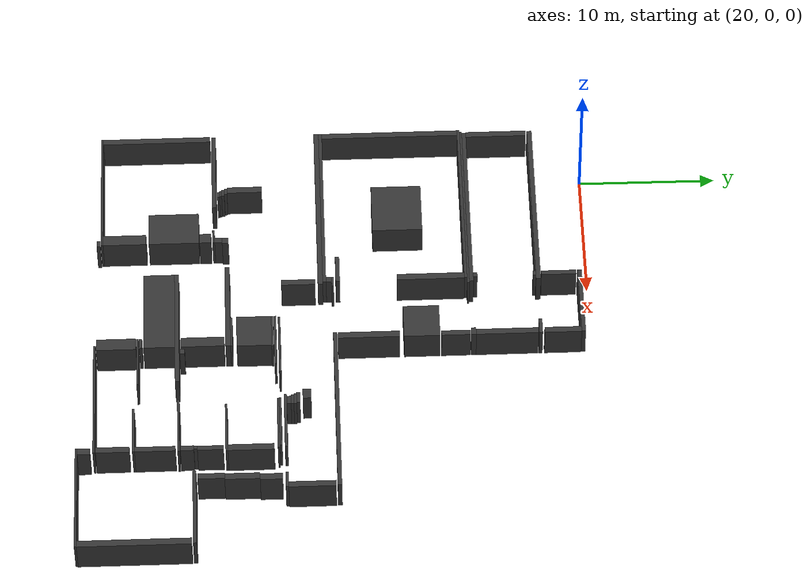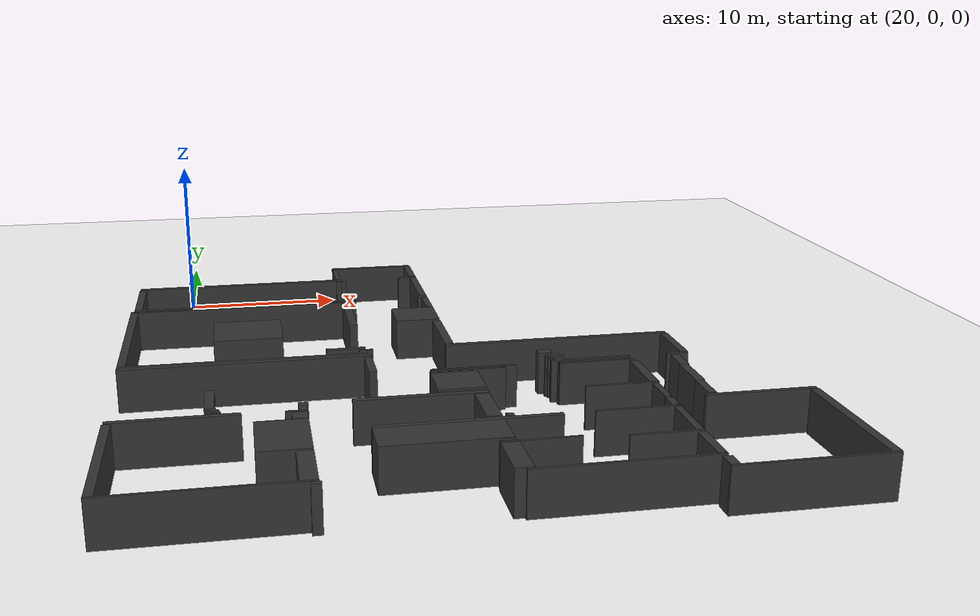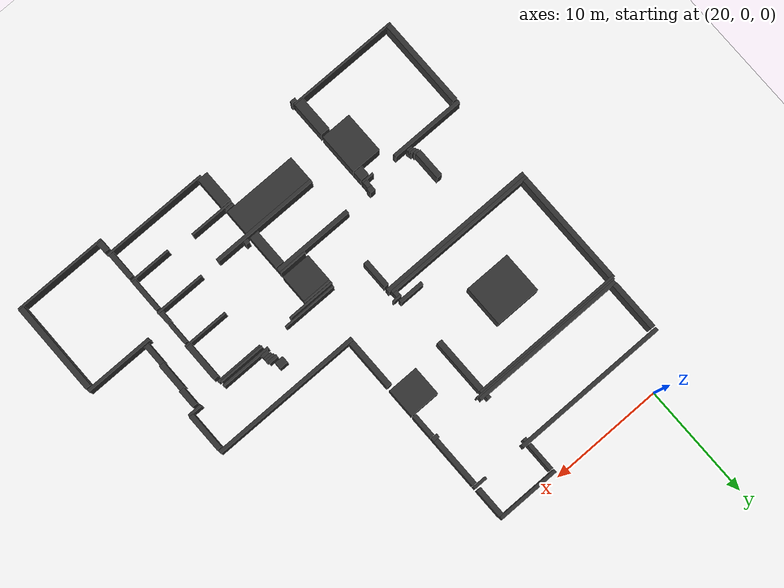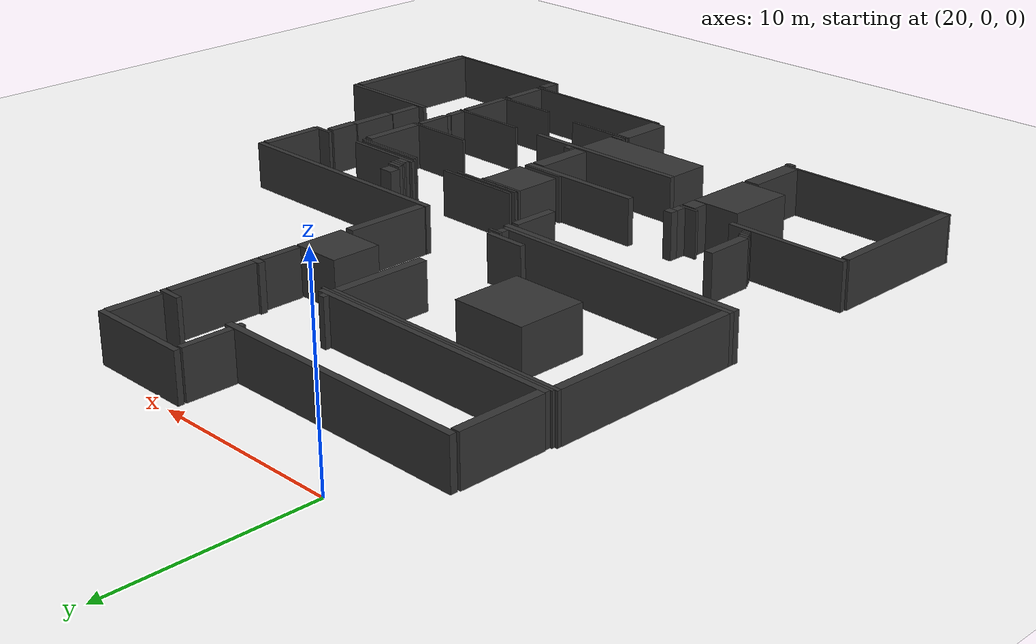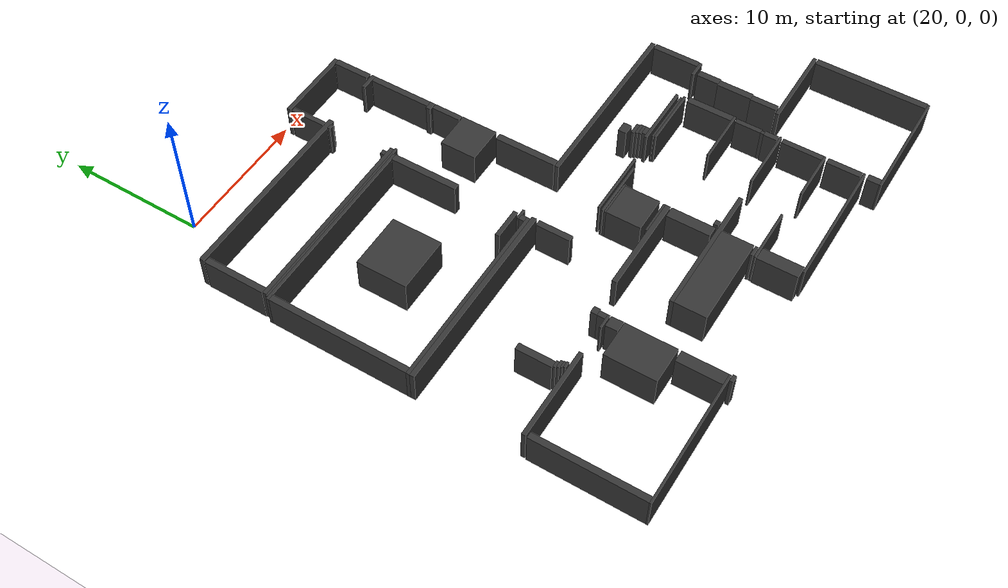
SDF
<?xml version="1.0" ?>
<sdf version="1.8">
  <world name="officemap_world">
    <gravity>0 0 -9.8</gravity>
    <scene>
      <ambient>0.4 0.4 0.4 1</ambient>
      <background>0.7 0.7 0.7 1</background>
    </scene>
    <!-- Ground plane: pure white (no textures) -->
    <model name="ground_plane">
      <static>true</static>
      <link name="link">
        <collision name="collision">
          <geometry><plane><normal>0 0 1</normal><size>100 100</size></plane></geometry>
        </collision>
        <visual name="visual">
          <geometry><plane><normal>0 0 1</normal><size>100 100</size></plane></geometry>
          <material>
            <diffuse>1 1 1 1</diffuse>
            <ambient>1 1 1 1</ambient>
            <specular>0 0 0 1</specular>
          </material>
        </visual>
      </link>
    </model>

    <model name="wall_9_599">
      <static>true</static>
      <pose>32.7250 -0.6000 1.2500 0 0 0.000000</pose>
      <link name="link">
        <collision name="collision">
          <geometry><box><size>5.5500 0.3000 2.5000</size></box></geometry>
        </collision>
        <visual name="visual">
          <geometry><box><size>5.5500 0.3000 2.5000</size></box></geometry>
          <material><ambient>0.2 0.2 0.2 1.0</ambient></material>
        </visual>
      </link>
    </model>

    <model name="wall_17_599">
      <static>true</static>
      <pose>30.1250 -2.1250 1.2500 0 0 0.000000</pose>
      <link name="link">
        <collision name="collision">
          <geometry><box><size>0.3500 2.5500 2.5000</size></box></geometry>
        </collision>
        <visual name="visual">
          <geometry><box><size>0.3500 2.5500 2.5000</size></box></geometry>
          <material><ambient>0.2 0.2 0.2 1.0</ambient></material>
        </visual>
      </link>
    </model>

    <model name="wall_15_702">
      <static>true</static>
      <pose>35.3250 -2.0750 1.2500 0 0 0.000000</pose>
      <link name="link">
        <collision name="collision">
          <geometry><box><size>0.4500 2.6500 2.5000</size></box></geometry>
        </collision>
        <visual name="visual">
          <geometry><box><size>0.4500 2.6500 2.5000</size></box></geometry>
          <material><ambient>0.2 0.2 0.2 1.0</ambient></material>
        </visual>
      </link>
    </model>

    <model name="wall_69_336">
      <static>true</static>
      <pose>23.7250 -3.6250 1.2500 0 0 0.000000</pose>
      <link name="link">
        <collision name="collision">
          <geometry><box><size>13.8500 0.3500 2.5000</size></box></geometry>
        </collision>
        <visual name="visual">
          <geometry><box><size>13.8500 0.3500 2.5000</size></box></geometry>
          <material><ambient>0.2 0.2 0.2 1.0</ambient></material>
        </visual>
      </link>
    </model>

    <model name="wall_71_686">
      <static>true</static>
      <pose>34.9250 -3.6750 1.2500 0 0 0.000000</pose>
      <link name="link">
        <collision name="collision">
          <geometry><box><size>1.2500 0.2500 2.5000</size></box></geometry>
        </collision>
        <visual name="visual">
          <geometry><box><size>1.2500 0.2500 2.5000</size></box></geometry>
          <material><ambient>0.2 0.2 0.2 1.0</ambient></material>
        </visual>
      </link>
    </model>

    <model name="wall_76_599">
      <static>true</static>
      <pose>30.1250 -3.9000 1.2500 0 0 0.000000</pose>
      <link name="link">
        <collision name="collision">
          <geometry><box><size>0.3500 0.2000 2.5000</size></box></geometry>
        </collision>
        <visual name="visual">
          <geometry><box><size>0.3500 0.2000 2.5000</size></box></geometry>
          <material><ambient>0.2 0.2 0.2 1.0</ambient></material>
        </visual>
      </link>
    </model>

    <model name="wall_78_335">
      <static>true</static>
      <pose>16.9750 -6.1250 1.2500 0 0 0.000000</pose>
      <link name="link">
        <collision name="collision">
          <geometry><box><size>0.4500 4.4500 2.5000</size></box></geometry>
        </collision>
        <visual name="visual">
          <geometry><box><size>0.4500 4.4500 2.5000</size></box></geometry>
          <material><ambient>0.2 0.2 0.2 1.0</ambient></material>
        </visual>
      </link>
    </model>

    <model name="wall_161_599">
      <static>true</static>
      <pose>30.1250 -8.2000 1.2500 0 0 0.000000</pose>
      <link name="link">
        <collision name="collision">
          <geometry><box><size>0.3500 0.3000 2.5000</size></box></geometry>
        </collision>
        <visual name="visual">
          <geometry><box><size>0.3500 0.3000 2.5000</size></box></geometry>
          <material><ambient>0.2 0.2 0.2 1.0</ambient></material>
        </visual>
      </link>
    </model>

    <model name="wall_77_702">
      <static>true</static>
      <pose>35.3250 -6.1000 1.2500 0 0 0.000000</pose>
      <link name="link">
        <collision name="collision">
          <geometry><box><size>0.4500 4.5000 2.5000</size></box></geometry>
        </collision>
        <visual name="visual">
          <geometry><box><size>0.4500 4.5000 2.5000</size></box></geometry>
          <material><ambient>0.2 0.2 0.2 1.0</ambient></material>
        </visual>
      </link>
    </model>

    <model name="wall_167_336">
      <static>true</static>
      <pose>23.7500 -8.5000 1.2500 0 0 0.000000</pose>
      <link name="link">
        <collision name="collision">
          <geometry><box><size>13.9000 0.3000 2.5000</size></box></geometry>
        </collision>
        <visual name="visual">
          <geometry><box><size>13.9000 0.3000 2.5000</size></box></geometry>
          <material><ambient>0.2 0.2 0.2 1.0</ambient></material>
        </visual>
      </link>
    </model>

    <model name="wall_167_699">
      <static>true</static>
      <pose>35.2500 -8.5250 1.2500 0 0 0.000000</pose>
      <link name="link">
        <collision name="collision">
          <geometry><box><size>0.6000 0.3500 2.5000</size></box></geometry>
        </collision>
        <visual name="visual">
          <geometry><box><size>0.6000 0.3500 2.5000</size></box></geometry>
          <material><ambient>0.2 0.2 0.2 1.0</ambient></material>
        </visual>
      </link>
    </model>

    <model name="wall_173_334">
      <static>true</static>
      <pose>23.7750 -8.7250 1.2500 0 0 0.000000</pose>
      <link name="link">
        <collision name="collision">
          <geometry><box><size>14.1500 0.1500 2.5000</size></box></geometry>
        </collision>
        <visual name="visual">
          <geometry><box><size>14.1500 0.1500 2.5000</size></box></geometry>
          <material><ambient>0.2 0.2 0.2 1.0</ambient></material>
        </visual>
      </link>
    </model>

    <model name="wall_176_331">
      <static>true</static>
      <pose>23.4500 -8.9000 1.2500 0 0 0.000000</pose>
      <link name="link">
        <collision name="collision">
          <geometry><box><size>13.8000 0.2000 2.5000</size></box></geometry>
        </collision>
        <visual name="visual">
          <geometry><box><size>13.8000 0.2000 2.5000</size></box></geometry>
          <material><ambient>0.2 0.2 0.2 1.0</ambient></material>
        </visual>
      </link>
    </model>

    <model name="wall_175_703">
      <static>true</static>
      <pose>35.3500 -9.8000 1.2500 0 0 0.000000</pose>
      <link name="link">
        <collision name="collision">
          <geometry><box><size>0.4000 2.1000 2.5000</size></box></geometry>
        </collision>
        <visual name="visual">
          <geometry><box><size>0.4000 2.1000 2.5000</size></box></geometry>
          <material><ambient>0.2 0.2 0.2 1.0</ambient></material>
        </visual>
      </link>
    </model>

    <model name="wall_219_657">
      <static>true</static>
      <pose>34.2000 -12.2500 1.2500 0 0 0.000000</pose>
      <link name="link">
        <collision name="collision">
          <geometry><box><size>2.7000 2.6000 2.5000</size></box></geometry>
        </collision>
        <visual name="visual">
          <geometry><box><size>2.7000 2.6000 2.5000</size></box></geometry>
          <material><ambient>0.2 0.2 0.2 1.0</ambient></material>
        </visual>
      </link>
    </model>

    <model name="wall_180_598">
      <static>true</static>
      <pose>30.1500 -11.4500 1.2500 0 0 0.000000</pose>
      <link name="link">
        <collision name="collision">
          <geometry><box><size>0.5000 4.9000 2.5000</size></box></geometry>
        </collision>
        <visual name="visual">
          <geometry><box><size>0.5000 4.9000 2.5000</size></box></geometry>
          <material><ambient>0.2 0.2 0.2 1.0</ambient></material>
        </visual>
      </link>
    </model>

    <model name="wall_238_435">
      <static>true</static>
      <pose>23.7750 -13.7250 1.2500 0 0 0.000000</pose>
      <link name="link">
        <collision name="collision">
          <geometry><box><size>4.0500 3.6500 2.5000</size></box></geometry>
        </collision>
        <visual name="visual">
          <geometry><box><size>4.0500 3.6500 2.5000</size></box></geometry>
          <material><ambient>0.2 0.2 0.2 1.0</ambient></material>
        </visual>
      </link>
    </model>

    <model name="wall_277_701">
      <static>true</static>
      <pose>35.3000 -16.0750 1.2500 0 0 0.000000</pose>
      <link name="link">
        <collision name="collision">
          <geometry><box><size>0.5000 4.4500 2.5000</size></box></geometry>
        </collision>
        <visual name="visual">
          <geometry><box><size>0.5000 4.4500 2.5000</size></box></geometry>
          <material><ambient>0.2 0.2 0.2 1.0</ambient></material>
        </visual>
      </link>
    </model>

    <model name="wall_361_563">
      <static>true</static>
      <pose>29.2750 -18.2000 1.2500 0 0 0.000000</pose>
      <link name="link">
        <collision name="collision">
          <geometry><box><size>2.2500 0.3000 2.5000</size></box></geometry>
        </collision>
        <visual name="visual">
          <geometry><box><size>2.2500 0.3000 2.5000</size></box></geometry>
          <material><ambient>0.2 0.2 0.2 1.0</ambient></material>
        </visual>
      </link>
    </model>

    <model name="wall_370_600">
      <static>true</static>
      <pose>30.4000 -18.5750 1.2500 0 0 0.000000</pose>
      <link name="link">
        <collision name="collision">
          <geometry><box><size>0.8000 0.1500 2.5000</size></box></geometry>
        </collision>
        <visual name="visual">
          <geometry><box><size>0.8000 0.1500 2.5000</size></box></geometry>
          <material><ambient>0.2 0.2 0.2 1.0</ambient></material>
        </visual>
      </link>
    </model>

    <model name="wall_367_701">
      <static>true</static>
      <pose>41.7500 -18.5000 1.2500 0 0 0.000000</pose>
      <link name="link">
        <collision name="collision">
          <geometry><box><size>13.4000 0.3000 2.5000</size></box></geometry>
        </collision>
        <visual name="visual">
          <geometry><box><size>13.4000 0.3000 2.5000</size></box></geometry>
          <material><ambient>0.2 0.2 0.2 1.0</ambient></material>
        </visual>
      </link>
    </model>

    <model name="wall_180_331">
      <static>true</static>
      <pose>16.7750 -14.0250 1.2500 0 0 0.000000</pose>
      <link name="link">
        <collision name="collision">
          <geometry><box><size>0.4500 10.0500 2.5000</size></box></geometry>
        </collision>
        <visual name="visual">
          <geometry><box><size>0.4500 10.0500 2.5000</size></box></geometry>
          <material><ambient>0.2 0.2 0.2 1.0</ambient></material>
        </visual>
      </link>
    </model>

    <model name="wall_373_600">
      <static>true</static>
      <pose>30.2000 -18.8500 1.2500 0 0 0.000000</pose>
      <link name="link">
        <collision name="collision">
          <geometry><box><size>0.4000 0.4000 2.5000</size></box></geometry>
        </collision>
        <visual name="visual">
          <geometry><box><size>0.4000 0.4000 2.5000</size></box></geometry>
          <material><ambient>0.2 0.2 0.2 1.0</ambient></material>
        </visual>
      </link>
    </model>

    <model name="wall_381_331">
      <static>true</static>
      <pose>23.4750 -19.1750 1.2500 0 0 0.000000</pose>
      <link name="link">
        <collision name="collision">
          <geometry><box><size>13.8500 0.2500 2.5000</size></box></geometry>
        </collision>
        <visual name="visual">
          <geometry><box><size>13.8500 0.2500 2.5000</size></box></geometry>
          <material><ambient>0.2 0.2 0.2 1.0</ambient></material>
        </visual>
      </link>
    </model>

    <model name="wall_386_331">
      <static>true</static>
      <pose>23.5750 -19.4750 1.2500 0 0 0.000000</pose>
      <link name="link">
        <collision name="collision">
          <geometry><box><size>14.0500 0.3500 2.5000</size></box></geometry>
        </collision>
        <visual name="visual">
          <geometry><box><size>14.0500 0.3500 2.5000</size></box></geometry>
          <material><ambient>0.2 0.2 0.2 1.0</ambient></material>
        </visual>
      </link>
    </model>

    <model name="wall_407_800">
      <static>true</static>
      <pose>40.4000 -20.6500 1.2500 0 0 0.000000</pose>
      <link name="link">
        <collision name="collision">
          <geometry><box><size>0.8000 0.6000 2.5000</size></box></geometry>
        </collision>
        <visual name="visual">
          <geometry><box><size>0.8000 0.6000 2.5000</size></box></geometry>
          <material><ambient>0.2 0.2 0.2 1.0</ambient></material>
        </visual>
      </link>
    </model>

    <model name="wall_423_806">
      <static>true</static>
      <pose>40.7250 -21.2750 1.2500 0 0 0.000000</pose>
      <link name="link">
        <collision name="collision">
          <geometry><box><size>0.8500 0.2500 2.5000</size></box></geometry>
        </collision>
        <visual name="visual">
          <geometry><box><size>0.8500 0.2500 2.5000</size></box></geometry>
          <material><ambient>0.2 0.2 0.2 1.0</ambient></material>
        </visual>
      </link>
    </model>

    <model name="wall_428_808">
      <static>true</static>
      <pose>40.8250 -21.5000 1.2500 0 0 0.000000</pose>
      <link name="link">
        <collision name="collision">
          <geometry><box><size>0.8500 0.2000 2.5000</size></box></geometry>
        </collision>
        <visual name="visual">
          <geometry><box><size>0.8500 0.2000 2.5000</size></box></geometry>
          <material><ambient>0.2 0.2 0.2 1.0</ambient></material>
        </visual>
      </link>
    </model>

    <model name="wall_432_810">
      <static>true</static>
      <pose>40.8750 -21.7000 1.2500 0 0 0.000000</pose>
      <link name="link">
        <collision name="collision">
          <geometry><box><size>0.7500 0.2000 2.5000</size></box></geometry>
        </collision>
        <visual name="visual">
          <geometry><box><size>0.7500 0.2000 2.5000</size></box></geometry>
          <material><ambient>0.2 0.2 0.2 1.0</ambient></material>
        </visual>
      </link>
    </model>

    <model name="wall_436_812">
      <static>true</static>
      <pose>40.9250 -21.9500 1.2500 0 0 0.000000</pose>
      <link name="link">
        <collision name="collision">
          <geometry><box><size>0.6500 0.3000 2.5000</size></box></geometry>
        </collision>
        <visual name="visual">
          <geometry><box><size>0.6500 0.3000 2.5000</size></box></geometry>
          <material><ambient>0.2 0.2 0.2 1.0</ambient></material>
        </visual>
      </link>
    </model>

    <model name="wall_375_961">
      <static>true</static>
      <pose>48.2750 -20.4250 1.2500 0 0 0.000000</pose>
      <link name="link">
        <collision name="collision">
          <geometry><box><size>0.4500 3.3500 2.5000</size></box></geometry>
        </collision>
        <visual name="visual">
          <geometry><box><size>0.4500 3.3500 2.5000</size></box></geometry>
          <material><ambient>0.2 0.2 0.2 1.0</ambient></material>
        </visual>
      </link>
    </model>

    <model name="wall_397_603">
      <static>true</static>
      <pose>30.3750 -21.0750 1.2500 0 0 0.000000</pose>
      <link name="link">
        <collision name="collision">
          <geometry><box><size>0.4500 2.4500 2.5000</size></box></geometry>
        </collision>
        <visual name="visual">
          <geometry><box><size>0.4500 2.4500 2.5000</size></box></geometry>
          <material><ambient>0.2 0.2 0.2 1.0</ambient></material>
        </visual>
      </link>
    </model>

    <model name="wall_442_808">
      <static>true</static>
      <pose>42.6750 -22.2000 1.2500 0 0 0.000000</pose>
      <link name="link">
        <collision name="collision">
          <geometry><box><size>4.5500 0.2000 2.5000</size></box></geometry>
        </collision>
        <visual name="visual">
          <geometry><box><size>4.5500 0.2000 2.5000</size></box></geometry>
          <material><ambient>0.2 0.2 0.2 1.0</ambient></material>
        </visual>
      </link>
    </model>

    <model name="wall_442_944">
      <static>true</static>
      <pose>47.8250 -22.2000 1.2500 0 0 0.000000</pose>
      <link name="link">
        <collision name="collision">
          <geometry><box><size>1.2500 0.2000 2.5000</size></box></geometry>
        </collision>
        <visual name="visual">
          <geometry><box><size>1.2500 0.2000 2.5000</size></box></geometry>
          <material><ambient>0.2 0.2 0.2 1.0</ambient></material>
        </visual>
      </link>
    </model>

    <model name="wall_449_670">
      <static>true</static>
      <pose>35.9250 -22.5250 1.2500 0 0 0.000000</pose>
      <link name="link">
        <collision name="collision">
          <geometry><box><size>4.8500 0.1500 2.5000</size></box></geometry>
        </collision>
        <visual name="visual">
          <geometry><box><size>4.8500 0.1500 2.5000</size></box></geometry>
          <material><ambient>0.2 0.2 0.2 1.0</ambient></material>
        </visual>
      </link>
    </model>

    <model name="wall_450_814">
      <static>true</static>
      <pose>42.7750 -22.5750 1.2500 0 0 0.000000</pose>
      <link name="link">
        <collision name="collision">
          <geometry><box><size>4.1500 0.1500 2.5000</size></box></geometry>
        </collision>
        <visual name="visual">
          <geometry><box><size>4.1500 0.1500 2.5000</size></box></geometry>
          <material><ambient>0.2 0.2 0.2 1.0</ambient></material>
        </visual>
      </link>
    </model>

    <model name="wall_453_815">
      <static>true</static>
      <pose>42.9000 -22.7250 1.2500 0 0 0.000000</pose>
      <link name="link">
        <collision name="collision">
          <geometry><box><size>4.3000 0.1500 2.5000</size></box></geometry>
        </collision>
        <visual name="visual">
          <geometry><box><size>4.3000 0.1500 2.5000</size></box></geometry>
          <material><ambient>0.2 0.2 0.2 1.0</ambient></material>
        </visual>
      </link>
    </model>

    <model name="wall_455_668">
      <static>true</static>
      <pose>35.5250 -22.8250 1.2500 0 0 0.000000</pose>
      <link name="link">
        <collision name="collision">
          <geometry><box><size>4.2500 0.1500 2.5000</size></box></geometry>
        </collision>
        <visual name="visual">
          <geometry><box><size>4.2500 0.1500 2.5000</size></box></geometry>
          <material><ambient>0.2 0.2 0.2 1.0</ambient></material>
        </visual>
      </link>
    </model>

    <model name="wall_459_668">
      <static>true</static>
      <pose>34.7250 -23.0250 1.2500 0 0 0.000000</pose>
      <link name="link">
        <collision name="collision">
          <geometry><box><size>2.6500 0.1500 2.5000</size></box></geometry>
        </collision>
        <visual name="visual">
          <geometry><box><size>2.6500 0.1500 2.5000</size></box></geometry>
          <material><ambient>0.2 0.2 0.2 1.0</ambient></material>
        </visual>
      </link>
    </model>

    <model name="wall_450_946">
      <static>true</static>
      <pose>47.5500 -23.3000 1.2500 0 0 0.000000</pose>
      <link name="link">
        <collision name="collision">
          <geometry><box><size>0.5000 1.6000 2.5000</size></box></geometry>
        </collision>
        <visual name="visual">
          <geometry><box><size>0.5000 1.6000 2.5000</size></box></geometry>
          <material><ambient>0.2 0.2 0.2 1.0</ambient></material>
        </visual>
      </link>
    </model>

    <model name="wall_462_668">
      <static>true</static>
      <pose>34.7000 -24.3500 1.2500 0 0 0.000000</pose>
      <link name="link">
        <collision name="collision">
          <geometry><box><size>2.6000 2.5000 2.5000</size></box></geometry>
        </collision>
        <visual name="visual">
          <geometry><box><size>2.6000 2.5000 2.5000</size></box></geometry>
          <material><ambient>0.2 0.2 0.2 1.0</ambient></material>
        </visual>
      </link>
    </model>

    <model name="wall_518_669">
      <static>true</static>
      <pose>34.7000 -25.9750 1.2500 0 0 0.000000</pose>
      <link name="link">
        <collision name="collision">
          <geometry><box><size>2.5000 0.1500 2.5000</size></box></geometry>
        </collision>
        <visual name="visual">
          <geometry><box><size>2.5000 0.1500 2.5000</size></box></geometry>
          <material><ambient>0.2 0.2 0.2 1.0</ambient></material>
        </visual>
      </link>
    </model>

    <model name="wall_472_428">
      <static>true</static>
      <pose>21.6500 -24.8750 1.2500 0 0 0.000000</pose>
      <link name="link">
        <collision name="collision">
          <geometry><box><size>0.5000 2.5500 2.5000</size></box></geometry>
        </collision>
        <visual name="visual">
          <geometry><box><size>0.5000 2.5500 2.5000</size></box></geometry>
          <material><ambient>0.2 0.2 0.2 1.0</ambient></material>
        </visual>
      </link>
    </model>

    <model name="wall_523_430">
      <static>true</static>
      <pose>21.7500 -26.2500 1.2500 0 0 0.000000</pose>
      <link name="link">
        <collision name="collision">
          <geometry><box><size>0.5000 0.2000 2.5000</size></box></geometry>
        </collision>
        <visual name="visual">
          <geometry><box><size>0.5000 0.2000 2.5000</size></box></geometry>
          <material><ambient>0.2 0.2 0.2 1.0</ambient></material>
        </visual>
      </link>
    </model>

    <model name="wall_461_894">
      <static>true</static>
      <pose>44.9500 -24.7000 1.2500 0 0 0.000000</pose>
      <link name="link">
        <collision name="collision">
          <geometry><box><size>0.5000 3.3000 2.5000</size></box></geometry>
        </collision>
        <visual name="visual">
          <geometry><box><size>0.5000 3.3000 2.5000</size></box></geometry>
          <material><ambient>0.2 0.2 0.2 1.0</ambient></material>
        </visual>
      </link>
    </model>

    <model name="wall_521_577">
      <static>true</static>
      <pose>32.4000 -26.2250 1.2500 0 0 0.000000</pose>
      <link name="link">
        <collision name="collision">
          <geometry><box><size>7.1000 0.3500 2.5000</size></box></geometry>
        </collision>
        <visual name="visual">
          <geometry><box><size>7.1000 0.3500 2.5000</size></box></geometry>
          <material><ambient>0.2 0.2 0.2 1.0</ambient></material>
        </visual>
      </link>
    </model>

    <model name="wall_527_823">
      <static>true</static>
      <pose>43.1750 -26.4250 1.2500 0 0 0.000000</pose>
      <link name="link">
        <collision name="collision">
          <geometry><box><size>4.0500 0.1500 2.5000</size></box></geometry>
        </collision>
        <visual name="visual">
          <geometry><box><size>4.0500 0.1500 2.5000</size></box></geometry>
          <material><ambient>0.2 0.2 0.2 1.0</ambient></material>
        </visual>
      </link>
    </model>

    <model name="wall_527_432">
      <static>true</static>
      <pose>21.8750 -26.4500 1.2500 0 0 0.000000</pose>
      <link name="link">
        <collision name="collision">
          <geometry><box><size>0.5500 0.2000 2.5000</size></box></geometry>
        </collision>
        <visual name="visual">
          <geometry><box><size>0.5500 0.2000 2.5000</size></box></geometry>
          <material><ambient>0.2 0.2 0.2 1.0</ambient></material>
        </visual>
      </link>
    </model>

    <model name="wall_522_522">
      <static>true</static>
      <pose>26.3500 -26.3250 1.2500 0 0 0.000000</pose>
      <link name="link">
        <collision name="collision">
          <geometry><box><size>0.5000 0.4500 2.5000</size></box></geometry>
        </collision>
        <visual name="visual">
          <geometry><box><size>0.5000 0.4500 2.5000</size></box></geometry>
          <material><ambient>0.2 0.2 0.2 1.0</ambient></material>
        </visual>
      </link>
    </model>

    <model name="wall_482_944">
      <static>true</static>
      <pose>47.4500 -25.3500 1.2500 0 0 0.000000</pose>
      <link name="link">
        <collision name="collision">
          <geometry><box><size>0.5000 2.5000 2.5000</size></box></geometry>
        </collision>
        <visual name="visual">
          <geometry><box><size>0.5000 2.5000 2.5000</size></box></geometry>
          <material><ambient>0.2 0.2 0.2 1.0</ambient></material>
        </visual>
      </link>
    </model>

    <model name="wall_531_434">
      <static>true</static>
      <pose>21.9500 -26.6250 1.2500 0 0 0.000000</pose>
      <link name="link">
        <collision name="collision">
          <geometry><box><size>0.5000 0.1500 2.5000</size></box></geometry>
        </collision>
        <visual name="visual">
          <geometry><box><size>0.5000 0.1500 2.5000</size></box></geometry>
          <material><ambient>0.2 0.2 0.2 1.0</ambient></material>
        </visual>
      </link>
    </model>

    <model name="wall_534_436">
      <static>true</static>
      <pose>22.0250 -26.7750 1.2500 0 0 0.000000</pose>
      <link name="link">
        <collision name="collision">
          <geometry><box><size>0.4500 0.1500 2.5000</size></box></geometry>
        </collision>
        <visual name="visual">
          <geometry><box><size>0.4500 0.1500 2.5000</size></box></geometry>
          <material><ambient>0.2 0.2 0.2 1.0</ambient></material>
        </visual>
      </link>
    </model>

    <model name="wall_531_522">
      <static>true</static>
      <pose>26.3000 -26.8250 1.2500 0 0 0.000000</pose>
      <link name="link">
        <collision name="collision">
          <geometry><box><size>0.4000 0.5500 2.5000</size></box></geometry>
        </collision>
        <visual name="visual">
          <geometry><box><size>0.4000 0.5500 2.5000</size></box></geometry>
          <material><ambient>0.2 0.2 0.2 1.0</ambient></material>
        </visual>
      </link>
    </model>

    <model name="wall_539_332">
      <static>true</static>
      <pose>19.9250 -27.1000 1.2500 0 0 0.000000</pose>
      <link name="link">
        <collision name="collision">
          <geometry><box><size>6.6500 0.3000 2.5000</size></box></geometry>
        </collision>
        <visual name="visual">
          <geometry><box><size>6.6500 0.3000 2.5000</size></box></geometry>
          <material><ambient>0.2 0.2 0.2 1.0</ambient></material>
        </visual>
      </link>
    </model>

    <model name="wall_542_508">
      <static>true</static>
      <pose>25.9500 -27.1750 1.2500 0 0 0.000000</pose>
      <link name="link">
        <collision name="collision">
          <geometry><box><size>1.1000 0.1500 2.5000</size></box></geometry>
        </collision>
        <visual name="visual">
          <geometry><box><size>1.1000 0.1500 2.5000</size></box></geometry>
          <material><ambient>0.2 0.2 0.2 1.0</ambient></material>
        </visual>
      </link>
    </model>

    <model name="wall_547_514">
      <static>true</static>
      <pose>26.1000 -27.7750 1.2500 0 0 0.000000</pose>
      <link name="link">
        <collision name="collision">
          <geometry><box><size>0.8000 0.8500 2.5000</size></box></geometry>
        </collision>
        <visual name="visual">
          <geometry><box><size>0.8000 0.8500 2.5000</size></box></geometry>
          <material><ambient>0.2 0.2 0.2 1.0</ambient></material>
        </visual>
      </link>
    </model>

    <model name="wall_533_895">
      <static>true</static>
      <pose>44.9250 -27.5750 1.2500 0 0 0.000000</pose>
      <link name="link">
        <collision name="collision">
          <geometry><box><size>0.3500 1.8500 2.5000</size></box></geometry>
        </collision>
        <visual name="visual">
          <geometry><box><size>0.3500 1.8500 2.5000</size></box></geometry>
          <material><ambient>0.2 0.2 0.2 1.0</ambient></material>
        </visual>
      </link>
    </model>

    <model name="wall_532_943">
      <static>true</static>
      <pose>47.3750 -27.5500 1.2500 0 0 0.000000</pose>
      <link name="link">
        <collision name="collision">
          <geometry><box><size>0.4500 1.9000 2.5000</size></box></geometry>
        </collision>
        <visual name="visual">
          <geometry><box><size>0.4500 1.9000 2.5000</size></box></geometry>
          <material><ambient>0.2 0.2 0.2 1.0</ambient></material>
        </visual>
      </link>
    </model>

    <model name="wall_570_895">
      <static>true</static>
      <pose>44.8750 -28.6250 1.2500 0 0 0.000000</pose>
      <link name="link">
        <collision name="collision">
          <geometry><box><size>0.2500 0.2500 2.5000</size></box></geometry>
        </collision>
        <visual name="visual">
          <geometry><box><size>0.2500 0.2500 2.5000</size></box></geometry>
          <material><ambient>0.2 0.2 0.2 1.0</ambient></material>
        </visual>
      </link>
    </model>

    <model name="wall_572_938">
      <static>true</static>
      <pose>49.9750 -28.7250 1.2500 0 0 0.000000</pose>
      <link name="link">
        <collision name="collision">
          <geometry><box><size>6.1500 0.2500 2.5000</size></box></geometry>
        </collision>
        <visual name="visual">
          <geometry><box><size>6.1500 0.2500 2.5000</size></box></geometry>
          <material><ambient>0.2 0.2 0.2 1.0</ambient></material>
        </visual>
      </link>
    </model>

    <model name="wall_530_703">
      <static>true</static>
      <pose>35.5500 -28.0500 1.2500 0 0 0.000000</pose>
      <link name="link">
        <collision name="collision">
          <geometry><box><size>0.8000 3.1000 2.5000</size></box></geometry>
        </collision>
        <visual name="visual">
          <geometry><box><size>0.8000 3.1000 2.5000</size></box></geometry>
          <material><ambient>0.2 0.2 0.2 1.0</ambient></material>
        </visual>
      </link>
    </model>

    <model name="wall_587_723">
      <static>true</static>
      <pose>36.3500 -29.5250 1.2500 0 0 0.000000</pose>
      <link name="link">
        <collision name="collision">
          <geometry><box><size>0.4000 0.3500 2.5000</size></box></geometry>
        </collision>
        <visual name="visual">
          <geometry><box><size>0.4000 0.3500 2.5000</size></box></geometry>
          <material><ambient>0.2 0.2 0.2 1.0</ambient></material>
        </visual>
      </link>
    </model>

    <model name="wall_575_894">
      <static>true</static>
      <pose>44.9000 -29.2250 1.2500 0 0 0.000000</pose>
      <link name="link">
        <collision name="collision">
          <geometry><box><size>0.4000 0.9500 2.5000</size></box></geometry>
        </collision>
        <visual name="visual">
          <geometry><box><size>0.4000 0.9500 2.5000</size></box></geometry>
          <material><ambient>0.2 0.2 0.2 1.0</ambient></material>
        </visual>
      </link>
    </model>

    <model name="wall_595_813">
      <static>true</static>
      <pose>42.9000 -29.8250 1.2500 0 0 0.000000</pose>
      <link name="link">
        <collision name="collision">
          <geometry><box><size>4.5000 0.1500 2.5000</size></box></geometry>
        </collision>
        <visual name="visual">
          <geometry><box><size>4.5000 0.1500 2.5000</size></box></geometry>
          <material><ambient>0.2 0.2 0.2 1.0</ambient></material>
        </visual>
      </link>
    </model>

    <model name="wall_595_588">
      <static>true</static>
      <pose>34.2000 -29.9000 1.2500 0 0 0.000000</pose>
      <link name="link">
        <collision name="collision">
          <geometry><box><size>9.6000 0.3000 2.5000</size></box></geometry>
        </collision>
        <visual name="visual">
          <geometry><box><size>9.6000 0.3000 2.5000</size></box></geometry>
          <material><ambient>0.2 0.2 0.2 1.0</ambient></material>
        </visual>
      </link>
    </model>

    <model name="wall_565_476">
      <static>true</static>
      <pose>25.1500 -30.0750 1.2500 0 0 0.000000</pose>
      <link name="link">
        <collision name="collision">
          <geometry><box><size>2.7000 3.6500 2.5000</size></box></geometry>
        </collision>
        <visual name="visual">
          <geometry><box><size>2.7000 3.6500 2.5000</size></box></geometry>
          <material><ambient>0.2 0.2 0.2 1.0</ambient></material>
        </visual>
      </link>
    </model>

    <model name="wall_601_588">
      <static>true</static>
      <pose>32.6750 -31.1750 1.2500 0 0 0.000000</pose>
      <link name="link">
        <collision name="collision">
          <geometry><box><size>6.5500 2.2500 2.5000</size></box></geometry>
        </collision>
        <visual name="visual">
          <geometry><box><size>6.5500 2.2500 2.5000</size></box></geometry>
          <material><ambient>0.2 0.2 0.2 1.0</ambient></material>
        </visual>
      </link>
    </model>

    <model name="wall_648_703">
      <static>true</static>
      <pose>35.5500 -32.5000 1.2500 0 0 0.000000</pose>
      <link name="link">
        <collision name="collision">
          <geometry><box><size>0.8000 0.2000 2.5000</size></box></geometry>
        </collision>
        <visual name="visual">
          <geometry><box><size>0.8000 0.2000 2.5000</size></box></geometry>
          <material><ambient>0.2 0.2 0.2 1.0</ambient></material>
        </visual>
      </link>
    </model>

    <model name="wall_653_703">
      <static>true</static>
      <pose>37.1500 -32.7250 1.2500 0 0 0.000000</pose>
      <link name="link">
        <collision name="collision">
          <geometry><box><size>4.0000 0.1500 2.5000</size></box></geometry>
        </collision>
        <visual name="visual">
          <geometry><box><size>4.0000 0.1500 2.5000</size></box></geometry>
          <material><ambient>0.2 0.2 0.2 1.0</ambient></material>
        </visual>
      </link>
    </model>

    <model name="wall_601_894">
      <static>true</static>
      <pose>44.9000 -31.5000 1.2500 0 0 0.000000</pose>
      <link name="link">
        <collision name="collision">
          <geometry><box><size>0.4000 2.9000 2.5000</size></box></geometry>
        </collision>
        <visual name="visual">
          <geometry><box><size>0.4000 2.9000 2.5000</size></box></geometry>
          <material><ambient>0.2 0.2 0.2 1.0</ambient></material>
        </visual>
      </link>
    </model>

    <model name="wall_659_827">
      <static>true</static>
      <pose>43.2250 -33.0250 1.2500 0 0 0.000000</pose>
      <link name="link">
        <collision name="collision">
          <geometry><box><size>3.7500 0.1500 2.5000</size></box></geometry>
        </collision>
        <visual name="visual">
          <geometry><box><size>3.7500 0.1500 2.5000</size></box></geometry>
          <material><ambient>0.2 0.2 0.2 1.0</ambient></material>
        </visual>
      </link>
    </model>

    <model name="wall_547_331">
      <static>true</static>
      <pose>16.7750 -31.3000 1.2500 0 0 0.000000</pose>
      <link name="link">
        <collision name="collision">
          <geometry><box><size>0.4500 7.9000 2.5000</size></box></geometry>
        </collision>
        <visual name="visual">
          <geometry><box><size>0.4500 7.9000 2.5000</size></box></geometry>
          <material><ambient>0.2 0.2 0.2 1.0</ambient></material>
        </visual>
      </link>
    </model>

    <model name="wall_642_513">
      <static>true</static>
      <pose>26.0750 -33.6750 1.2500 0 0 0.000000</pose>
      <link name="link">
        <collision name="collision">
          <geometry><box><size>0.8500 3.1500 2.5000</size></box></geometry>
        </collision>
        <visual name="visual">
          <geometry><box><size>0.8500 3.1500 2.5000</size></box></geometry>
          <material><ambient>0.2 0.2 0.2 1.0</ambient></material>
        </visual>
      </link>
    </model>

    <model name="wall_705_331">
      <static>true</static>
      <pose>21.5250 -35.3250 1.2500 0 0 0.000000</pose>
      <link name="link">
        <collision name="collision">
          <geometry><box><size>9.9500 0.1500 2.5000</size></box></geometry>
        </collision>
        <visual name="visual">
          <geometry><box><size>9.9500 0.1500 2.5000</size></box></geometry>
          <material><ambient>0.2 0.2 0.2 1.0</ambient></material>
        </visual>
      </link>
    </model>

    <model name="wall_709_522">
      <static>true</static>
      <pose>26.3500 -35.5750 1.2500 0 0 0.000000</pose>
      <link name="link">
        <collision name="collision">
          <geometry><box><size>0.5000 0.2500 2.5000</size></box></geometry>
        </collision>
        <visual name="visual">
          <geometry><box><size>0.5000 0.2500 2.5000</size></box></geometry>
          <material><ambient>0.2 0.2 0.2 1.0</ambient></material>
        </visual>
      </link>
    </model>

    <model name="wall_657_702">
      <static>true</static>
      <pose>35.5750 -34.2750 1.2500 0 0 0.000000</pose>
      <link name="link">
        <collision name="collision">
          <geometry><box><size>0.9500 2.8500 2.5000</size></box></geometry>
        </collision>
        <visual name="visual">
          <geometry><box><size>0.9500 2.8500 2.5000</size></box></geometry>
          <material><ambient>0.2 0.2 0.2 1.0</ambient></material>
        </visual>
      </link>
    </model>

    <model name="wall_666_893">
      <static>true</static>
      <pose>44.8750 -34.5000 1.2500 0 0 0.000000</pose>
      <link name="link">
        <collision name="collision">
          <geometry><box><size>0.4500 2.4000 2.5000</size></box></geometry>
        </collision>
        <visual name="visual">
          <geometry><box><size>0.4500 2.4000 2.5000</size></box></geometry>
          <material><ambient>0.2 0.2 0.2 1.0</ambient></material>
        </visual>
      </link>
    </model>

    <model name="wall_715_713">
      <static>true</static>
      <pose>40.3750 -35.8250 1.2500 0 0 0.000000</pose>
      <link name="link">
        <collision name="collision">
          <geometry><box><size>9.4500 0.1500 2.5000</size></box></geometry>
        </collision>
        <visual name="visual">
          <geometry><box><size>9.4500 0.1500 2.5000</size></box></geometry>
          <material><ambient>0.2 0.2 0.2 1.0</ambient></material>
        </visual>
      </link>
    </model>

    <model name="wall_722_894">
      <static>true</static>
      <pose>44.9500 -36.5500 1.2500 0 0 0.000000</pose>
      <link name="link">
        <collision name="collision">
          <geometry><box><size>0.5000 0.9000 2.5000</size></box></geometry>
        </collision>
        <visual name="visual">
          <geometry><box><size>0.5000 0.9000 2.5000</size></box></geometry>
          <material><ambient>0.2 0.2 0.2 1.0</ambient></material>
        </visual>
      </link>
    </model>

    <model name="wall_579_1052">
      <static>true</static>
      <pose>52.8500 -32.9750 1.2500 0 0 0.000000</pose>
      <link name="link">
        <collision name="collision">
          <geometry><box><size>0.5000 8.0500 2.5000</size></box></geometry>
        </collision>
        <visual name="visual">
          <geometry><box><size>0.5000 8.0500 2.5000</size></box></geometry>
          <material><ambient>0.2 0.2 0.2 1.0</ambient></material>
        </visual>
      </link>
    </model>

    <model name="wall_740_894">
      <static>true</static>
      <pose>48.8750 -37.0750 1.2500 0 0 0.000000</pose>
      <link name="link">
        <collision name="collision">
          <geometry><box><size>8.3500 0.1500 2.5000</size></box></geometry>
        </collision>
        <visual name="visual">
          <geometry><box><size>8.3500 0.1500 2.5000</size></box></geometry>
          <material><ambient>0.2 0.2 0.2 1.0</ambient></material>
        </visual>
      </link>
    </model>

  </world>
</sdf>
